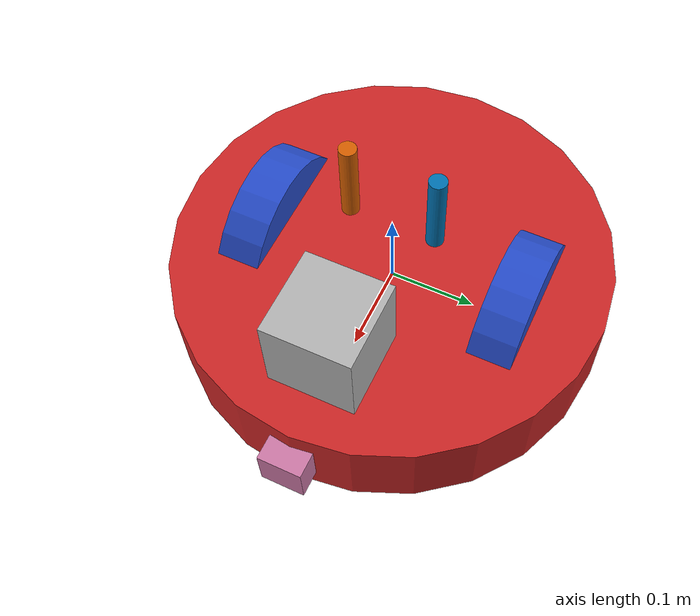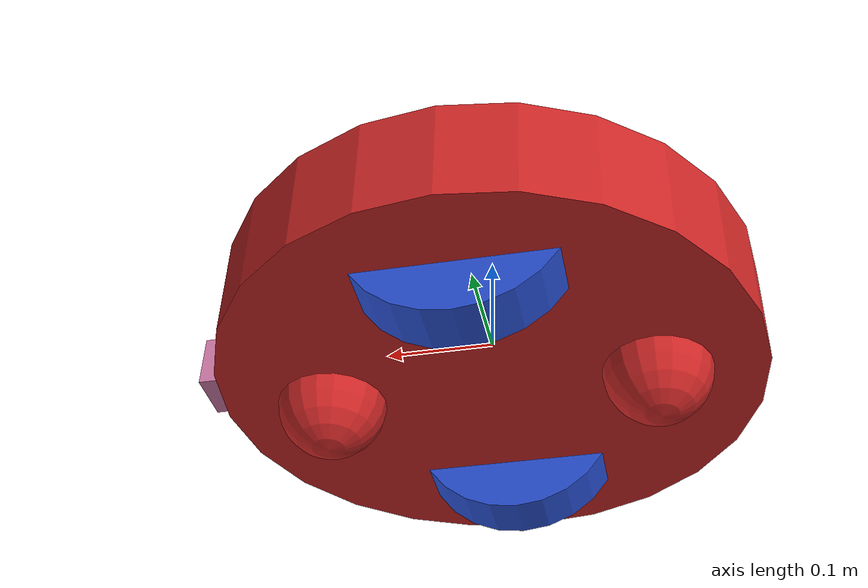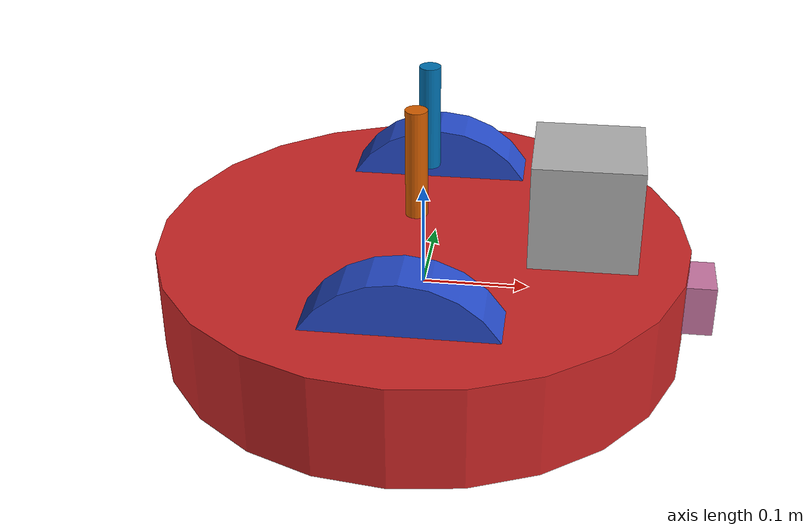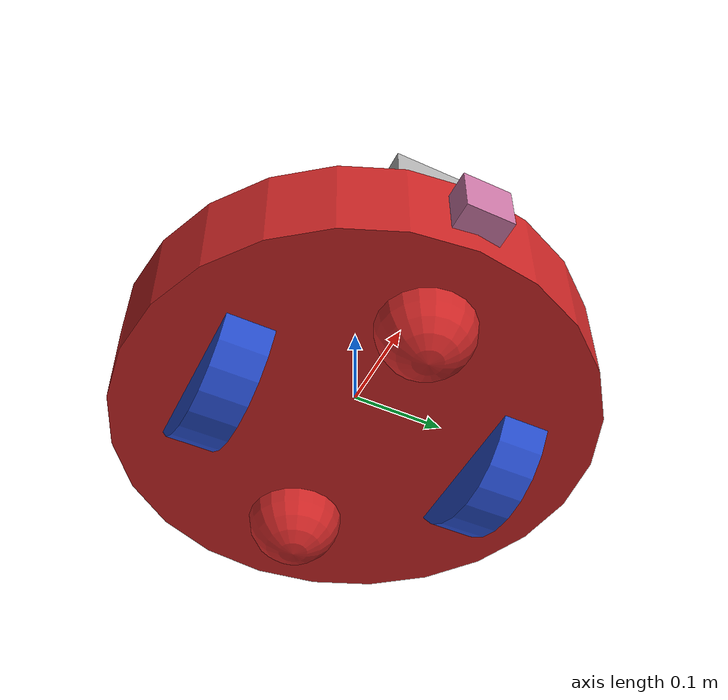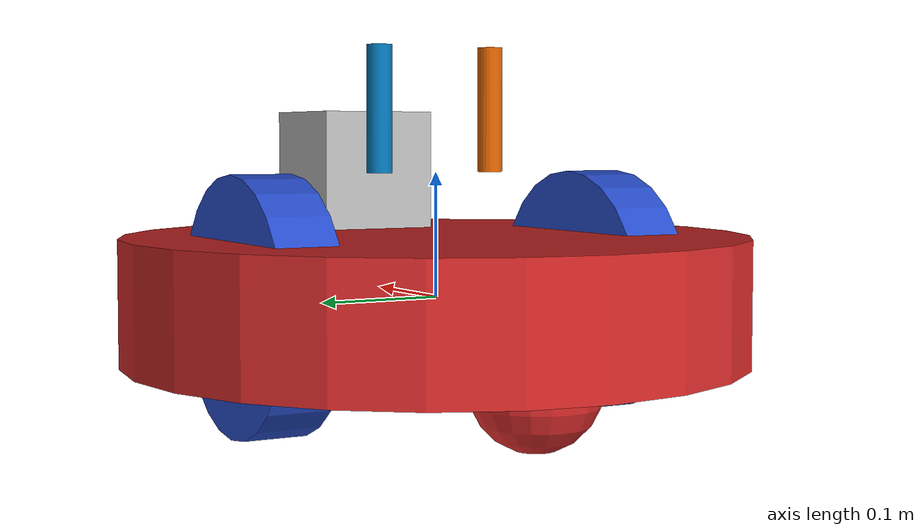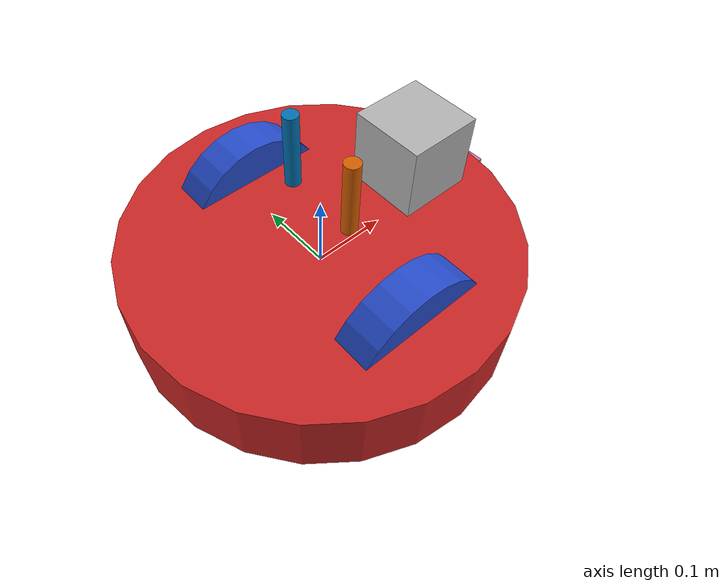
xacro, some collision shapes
<?xml version='1.0'?>

<robot name="my_robot" xmlns:xacro="http://www.ros.org/wiki/xacro">

  <xacro:include filename="$(find my_robot)/urdf/my_robot.gazebo" />

  <link name="robot_footprint"></link>

  <joint name="robot_footprint_joint" type="fixed">
    <origin xyz="0 0 0" rpy="0 0 0" />
    <parent link="robot_footprint"/>
    <child link="chassis" />
  </joint>

  <joint type="continuous" name="left_wheel_hinge">
    <origin xyz="0 0.15 0" rpy="0 0 0"/>
    <child link="left_wheel"/>
    <parent link="chassis"/>
    <axis xyz="0 1 0" rpy="0 0 0"/>
    <limit effort="10000" velocity="1000"/>
    <dynamics damping="1.0" friction="1.0"/>
  </joint>

  <joint type="continuous" name="right_wheel_hinge">
    <origin xyz="0 -0.15 0" rpy="0 0 0"/>
    <child link="right_wheel"/>
    <parent link="chassis"/>
    <axis xyz="0 1 0" rpy="0 0 0"/>
    <limit effort="10000" velocity="1000"/>
    <dynamics damping="1.0" friction="1.0"/>
  </joint>

  <joint type="prismatic" name="left_arm_lift">
    <origin xyz="0.0 0.05 0.15" rpy="0 0 0"/>
    <child link="left_arm"/>
    <parent link="chassis"/>
    <axis xyz="0 0 1" rpy="0 0 0"/>
    <limit effort="10000" velocity="1000" lower="0.0" upper="0.1"/>
    <dynamics damping="1.0" friction="1.0"/>
  </joint>

  <joint type="prismatic" name="right_arm_lift">
    <origin xyz="0.0 -0.05 0.15" rpy="0 0 0"/>
    <child link="right_arm"/>
    <parent link="chassis"/>
    <axis xyz="0 0 1" rpy="0 0 0"/>
    <limit effort="10000" velocity="1000" lower="0.0" upper="0.1"/>
    <dynamics damping="1.0" friction="1.0"/>
  </joint>

  <joint type="fixed" name="camera_joint">
    <origin xyz="0.25 0 0" rpy="0 0 0"/>
    <child link="camera"/>
    <parent link="chassis"/>
    <axis xyz="0 1 0" rpy="0 0 0"/>
  </joint>

  <joint type="fixed" name="hokuyo_joint">
    <origin xyz="0.15 0 0.1" rpy="0 0 0"/>
    <child link="hokuyo"/>
    <parent link="chassis"/>
    <axis xyz="0 1 0" rpy="0 0 0"/>
  </joint>

  <link name='chassis'>
    <pose>0 0 0.1 0 0 0</pose>

    <inertial>
      <mass value="15.0"/>
      <origin xyz="0.0 0 0" rpy=" 0 0 0"/>
      <inertia
          ixx="0.1" ixy="0" ixz="0"
          iyy="0.1" iyz="0"
          izz="0.1"
      />
    </inertial>

    <collision name='collision'>
      <origin xyz="0 0 0" rpy=" 0 0 0"/>
      <geometry>
        <cylinder radius="0.3" length="0.1"/>
      </geometry>
    </collision>

    <visual name='chassis_visual'>
      <origin xyz="0 0 0" rpy=" 0 0 0"/>
      <geometry>
        <cylinder radius="0.25" length="0.1"/>
        <material name="red"/>
      </geometry>
    </visual>

    <collision name='back_caster_collision'>
      <origin xyz="-0.15 0 -0.05" rpy=" 0 0 0"/>
      <geometry>
        <sphere radius="0.0499"/>
      </geometry>
    </collision>

    <visual name='back_caster_visual'>
      <origin xyz="-0.15 0 -0.05" rpy=" 0 0 0"/>
      <geometry>
        <sphere radius="0.05"/>
      </geometry>
    </visual>

    <collision name='front_caster_collision'>
      <origin xyz="0.15 0 -0.05" rpy=" 0 0 0"/>
      <geometry>
        <sphere radius="0.0499"/>
      </geometry>
    </collision>

    <visual name='front_caster_visual'>
      <origin xyz="0.15 0 -0.05" rpy=" 0 0 0"/>
      <geometry>
        <sphere radius="0.05"/>
      </geometry>
    </visual>

  </link>

  <gazebo reference="chassis">
    <material>Gazebo/Red</material>
  </gazebo>

  <link name='left_wheel'>
    <pose>0 0 0 0 1.5707 1.5707</pose>

    <inertial>
      <mass value="5.0"/>
      <origin xyz="0.0 0 0" rpy=" 0 1.5707 1.5707"/>
      <inertia
          ixx="0.1" ixy="0" ixz="0"
          iyy="0.1" iyz="0"
          izz="0.1"
      />
    </inertial>

    <collision name='left_wheel_collision'>
      <origin xyz="0 0 0" rpy=" 0 1.5707 1.5707"/>
      <geometry>
        <cylinder radius="0.1" length="0.05"/>
      </geometry>
    </collision>

    <visual name='left_wheel_visual'>
      <origin xyz="0 0 0" rpy=" 0 1.5707 1.5707"/>
      <geometry>
        <cylinder radius="0.1" length="0.05"/>
      </geometry>
    </visual>

  </link>

  <gazebo reference="left_wheel">
    <material>Gazebo/Blue</material>
  </gazebo>

  <link name='right_wheel'>
    <pose>0 0 0 0 1.5707 1.5707</pose>

    <inertial>
      <mass value="5.0"/>
      <origin xyz="0.0 0 0" rpy=" 0 1.5707 1.5707"/>
      <inertia
          ixx="0.1" ixy="0" ixz="0"
          iyy="0.1" iyz="0"
          izz="0.1"
      />
    </inertial>

    <collision name='right_wheel_collision'>
      <origin xyz="0 0 0" rpy=" 0 1.5707 1.5707"/>
      <geometry>
        <cylinder radius="0.1" length="0.05"/>
      </geometry>
    </collision>

    <visual name='right_wheel_visual'>
      <origin xyz="0 0 0" rpy=" 0 1.5707 1.5707"/>
      <geometry>
        <cylinder radius="0.1" length="0.05"/>
      </geometry>
    </visual>

  </link>

  <gazebo reference="right_wheel">
    <material>Gazebo/Blue</material>
  </gazebo>

  <link name='left_arm'>
    <pose>0 0 0 0 0 0</pose>

    <inertial>
      <mass value="0.5"/>
      <origin xyz="0.0 0 0" rpy=" 0 0 0"/>
      <inertia
          ixx="0.1" ixy="0" ixz="0"
          iyy="0.1" iyz="0"
          izz="0.1"
      />
    </inertial>

    <collision name='left_arm_collision'>
      <origin xyz="0 0 0" rpy=" 0 0 0"/>
      <geometry>
        <cylinder radius="0.01" length="0.1"/>
      </geometry>
    </collision>

    <visual name='left_arm_visual'>
      <origin xyz="0 0 0" rpy=" 0 0 0"/>
      <geometry>
        <cylinder radius="0.01" length="0.1"/>
      </geometry>
    </visual>

  </link>

  <link name='right_arm'>
    <pose>0 0 0 0 0 0</pose>

    <inertial>
      <mass value="0.5"/>
      <origin xyz="0.0 0 0" rpy=" 0 0 0"/>
      <inertia
          ixx="0.1" ixy="0" ixz="0"
          iyy="0.1" iyz="0"
          izz="0.1"
      />
    </inertial>

    <collision name='right_arm_collision'>
      <origin xyz="0 0 0" rpy=" 0 0 0"/>
      <geometry>
        <cylinder radius="0.01" length="0.1"/>
      </geometry>
    </collision>

    <visual name='right_arm_visual'>
      <origin xyz="0 0 0" rpy=" 0 0 0"/>
      <geometry>
        <cylinder radius="0.01" length="0.1"/>
      </geometry>
    </visual>

  </link>

  <link name='camera'>
    <pose>0 0 0 0 0 0</pose>

    <inertial>
      <mass value="0.1"/>
      <origin xyz="0.0 0 0" rpy=" 0 0 0"/>
      <inertia
          ixx="1e-6" ixy="0" ixz="0"
          iyy="1e-6" iyz="0"
          izz="1e-6"
      />
    </inertial>

    <collision name='camera_collision'>
      <origin xyz="0 0 0" rpy=" 0 0 0"/>
      <geometry>
        <box size=".05 .05 .05"/>
      </geometry>
    </collision>

    <visual name='camera_visual'>
      <origin xyz="0 0 0" rpy=" 0 0 0"/>
      <geometry>
        <box size=".05 .05 .05"/>
      </geometry>
    </visual>

  </link>

  <link name='hokuyo'>
    <pose>0 0 0 0 0 0</pose>

    <inertial>
      <mass value="1e-5"/>
      <origin xyz="0.0 0 0" rpy=" 0 0 0"/>
      <inertia
          ixx="1e-6" ixy="0" ixz="0"
          iyy="1e-6" iyz="0"
          izz="1e-6"
      />
    </inertial>

    <collision name='hokuyo_collision'>
      <origin xyz="0 0 0" rpy=" 0 0 0"/>
      <geometry>
        <box size=".1 .1 .1"/>
      </geometry>
    </collision>

    <visual name='hokuyo_visual'>
      <origin xyz="0 0 0" rpy=" 0 0 0"/>
      <geometry>
        <mesh filename="package://my_robot/meshes/hokuyo.dae"/>
      </geometry>
    </visual>

  </link>

</robot>
